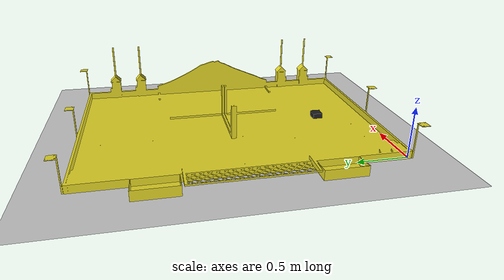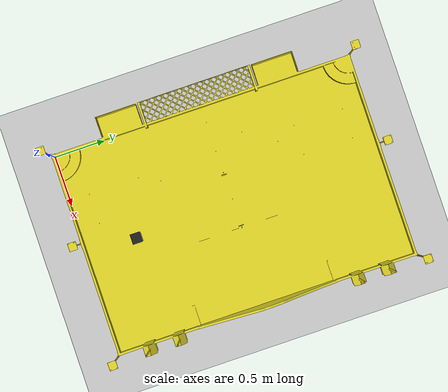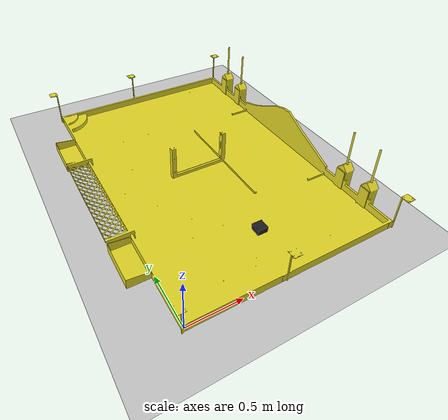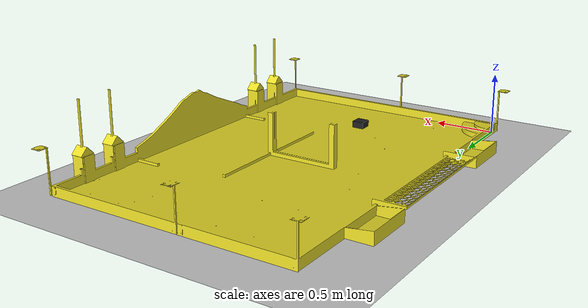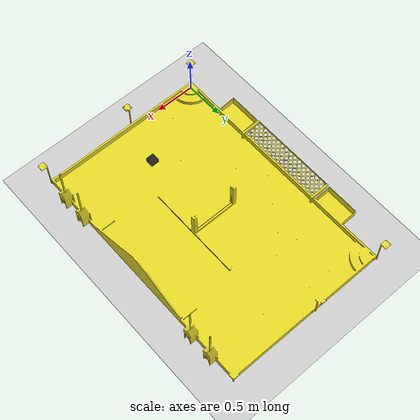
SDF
<?xml version="1.0" ?>
<sdf version="1.4">
  <world name="eurobot2016">
    <!-- A global light source -->
    <include>
      <uri>model://sun</uri>
    </include>
    <!-- A ground plane -->
    <include>
      <uri>model://ground_plane</uri>
    </include>
    <!-- Eurobot table -->
    <model name="table">
      <pose>0 0 0.01  0 0 0</pose>
      <static>true</static>
      <link name="body">
        <visual name="visual">
          <geometry>
            <mesh>
              <uri>file://worlds/table.dae</uri>
            </mesh>
          </geometry>
          <material>
            <script>
              <uri>file://media/materials/scripts/gazebo.material</uri>
              <name>Gazebo/Yellow</name>
            </script>
          </material>
        </visual>
        <collision name="collision">
          <geometry>
            <mesh>
              <uri>file://worlds/table.dae</uri>
            </mesh>
          </geometry>
        </collision>
      </link>
    </model>
    <!-- Robot -->
    <include>
      <uri>file://robot</uri>
    </include>
  </world>
</sdf>

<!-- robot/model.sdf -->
<sdf version="1.4">
  <model name="robot">
    <pose>1 0.5 0.03 0 0 0</pose>
    <static>false</static>
    <link name="link">
      <inertial>
        <mass>0.1</mass>
        <inertia>
          <ixx>0.083</ixx>       <!-- for a box: ixx = 0.083 * mass * (y*y + z*z) -->
          <ixy>0.0</ixy>         <!-- for a box: ixy = 0 -->
          <ixz>0.0</ixz>         <!-- for a box: ixz = 0 -->
          <iyy>0.083</iyy>       <!-- for a box: iyy = 0.083 * mass * (x*x + z*z) -->
          <iyz>0.0</iyz>         <!-- for a box: iyz = 0 -->
          <izz>0.083</izz>       <!-- for a box: izz = 0.083 * mass * (x*x + y*y) -->
        </inertia>
      </inertial>
      <collision name="collision">
        <geometry>
          <box>
            <size>0.03 0.03 0.07</size>
          </box>
        </geometry>
      </collision>
      <visual name="visual">
        <geometry>
          <box>
            <size>0.1 0.1 0.07</size>
          </box>
        </geometry>
        <material>
          <script>
            <uri>file://media/materials/scripts/gazebo.material</uri>
            <name>Gazebo/Black</name>
          </script>
        </material>
      </visual>
      <sensor name="laser" type="ray">
        <pose>0 0 0 0 0 0</pose>
        <ray>
          <scan>
            <horizontal>
              <samples>813</samples>
              <resolution>1</resolution>
              <min_angle>-2.357</min_angle>
              <max_angle>2.357</max_angle>
            </horizontal>
          </scan>
          <range>
            <min>0.05</min>
            <max>10</max>
            <resolution>0.01</resolution>
          </range>
          <noise>
            <type>gaussian</type>
            <mean>0.0</mean>
            <stddev>0.005</stddev>
          </noise>
        </ray>
        <plugin name="laser" filename="libRayPlugin.so" />
        <always_on>1</always_on>
        <update_rate>15</update_rate>
        <visualize>true</visualize>
      </sensor>
    </link>
  </model>
</sdf>
